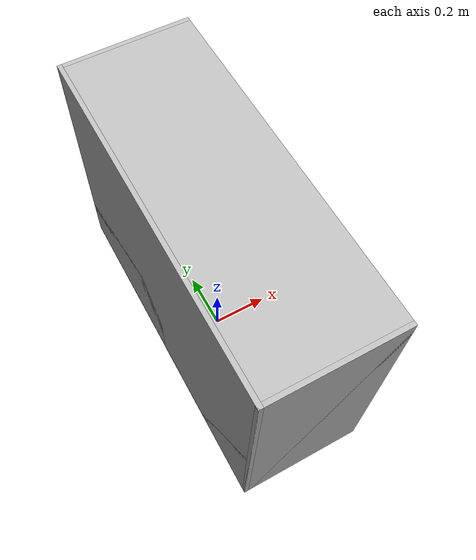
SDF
<?xml version="1.0"?>
<sdf version="1.6">
  <model name="rwc2017/cabinet_brown_low">
    <link name="1_link">
      <collision name="1_col">
        <geometry>
          <box>
            <size>0.44 0.015 0.9</size>
          </box>
        </geometry>
      </collision>
      <visual name="1_vis">
        <geometry>
          <box>
            <size>0.44 0.015 0.9</size>
          </box>
        </geometry>
      </visual>
      <pose>0 -0.5925 0.45 0 0 0</pose>
    </link>
    <link name="2_link">
      <collision name="2_col">
        <geometry>
          <box>
            <size>0.44 0.015 0.9</size>
          </box>
        </geometry>
      </collision>
      <visual name="2_vis">
        <geometry>
          <box>
            <size>0.44 0.015 0.9</size>
          </box>
        </geometry>
      </visual>
      <pose>0 0.5925 0.45 0 0 0</pose>
    </link>
    <link name="3_link">
      <collision name="3_col">
        <geometry>
          <box>
            <size>0.015 1.2 0.9</size>
          </box>
        </geometry>
      </collision>
      <visual name="3_vis">
        <geometry>
          <box>
            <size>0.015 1.2 0.9</size>
          </box>
        </geometry>
      </visual>
      <pose>-0.2125 0 0.45 0 0 0</pose>
    </link>
    <link name="4_link">
      <collision name="4_col">
        <geometry>
          <box>
            <size>0.425 1.17 0.03</size>
          </box>
        </geometry>
      </collision>
      <visual name="4_vis">
        <geometry>
          <box>
            <size>0.425 1.17 0.03</size>
          </box>
        </geometry>
      </visual>
      <pose>0.0075 0 0.885 0 0 0</pose>
    </link>
    <link name="5_link">
      <collision name="5_col">
        <geometry>
          <box>
            <size>0.425 1.17 0.03</size>
          </box>
        </geometry>
      </collision>
      <visual name="5_vis">
        <geometry>
          <box>
            <size>0.425 1.17 0.03</size>
          </box>
        </geometry>
      </visual>
      <pose>0.0075 0 0.015 0 0 0</pose>
    </link>
    <link name="6_link">
      <collision name="6_col">
        <geometry>
          <box>
            <size>0.425 1.17 0.045</size>
          </box>
        </geometry>
      </collision>
      <visual name="6_vis">
        <geometry>
          <box>
            <size>0.425 1.17 0.045</size>
          </box>
        </geometry>
      </visual>
      <pose>0.0075 0 0.4625 0 0 0</pose>
    </link>
    <link name="7_link">
      <collision name="7_col">
        <geometry>
          <box>
            <size>0.425 0.045 0.855</size>
          </box>
        </geometry>
      </collision>
      <visual name="7_vis">
        <geometry>
          <box>
            <size>0.425 0.045 0.855</size>
          </box>
        </geometry>
      </visual>
      <pose>0.0075 0.0 0.4575 0 0 0</pose>
    </link>
    <link name="8_link">
      <collision name="8_col">
        <geometry>
          <box>
            <size>0.44 0.6 0.89</size>
          </box>
        </geometry>
      </collision>
      <visual name="8_vis">
        <geometry>
          <box>
            <size>0.44 0.6 0.89</size>
          </box>
        </geometry>
      </visual>
      <pose>0.0 -0.3 0.44 0 0 0</pose>
    </link>
    <link name="9_link">
      <collision name="9_col">
        <geometry>
          <box>
            <size>0.44 0.6 0.43</size>
          </box>
        </geometry>
      </collision>
      <visual name="9_vis">
        <geometry>
          <box>
            <size>0.44 0.6 0.43</size>
          </box>
        </geometry>
      </visual>
      <pose>0.0 0.3 0.22 0 0 0</pose>
    </link>
    <link name="in_front_of">
      <virtual_volume name="in_front_of_vv">
        <geometry>
          <box>
            <size>0.2 0.7 0.01</size>
          </box>
        </geometry>
        <pose>0.72 0.15 0.005 0 0 0</pose>
      </virtual_volume>
    </link>
    <link name="on_top_of">
      <virtual_volume name="on_top_of_vv">
        <geometry>
          <box>
            <size>0.415 1.14 0.325</size>
          </box>
        </geometry>
        <pose>0.0075 0.0 1.0875 0 0 0</pose>
      </virtual_volume>
    </link>
    <link name="shelf1">
      <virtual_volume name="shelf1_vv">
        <geometry>
          <box>
            <size>0.395 0.51 0.29</size>
          </box>
        </geometry>
        <pose>0.0175 0.305 0.655 0 0 0</pose>
      </virtual_volume>
    </link>
    <static>true</static>
  </model>
</sdf>
